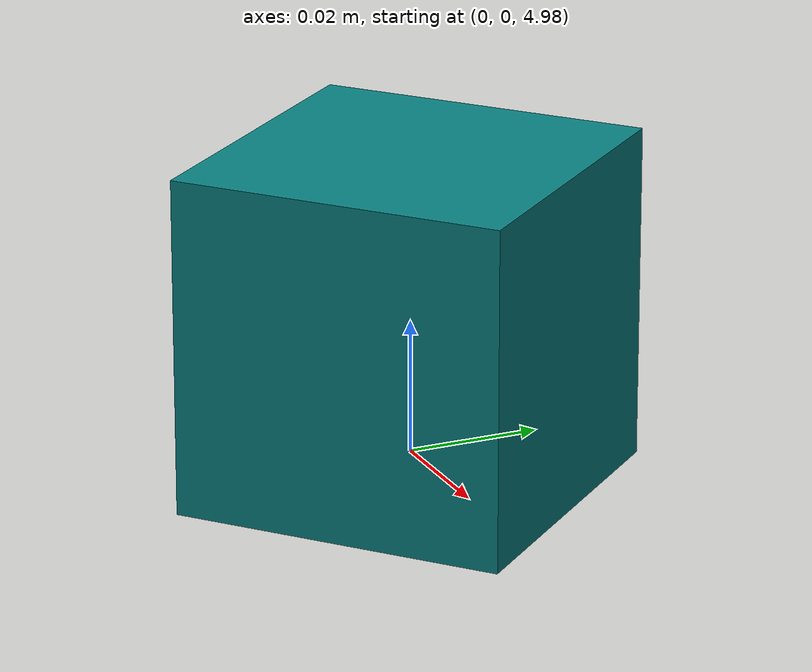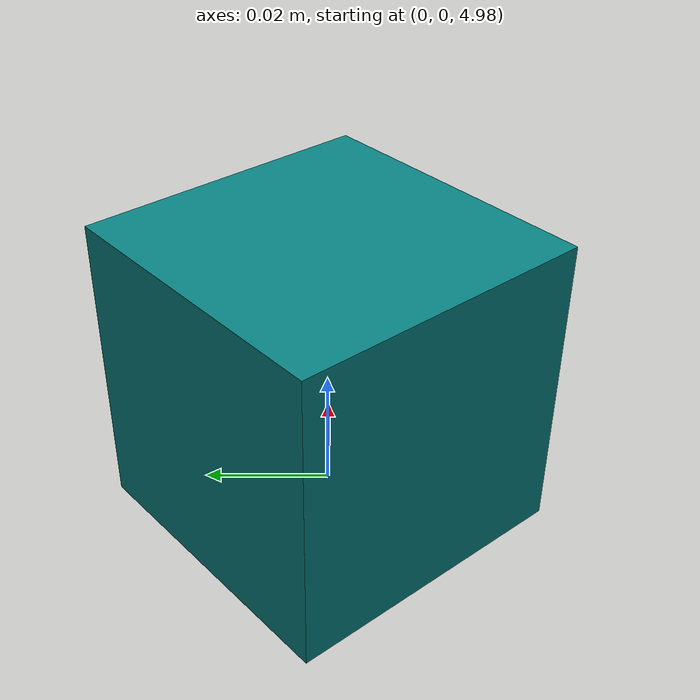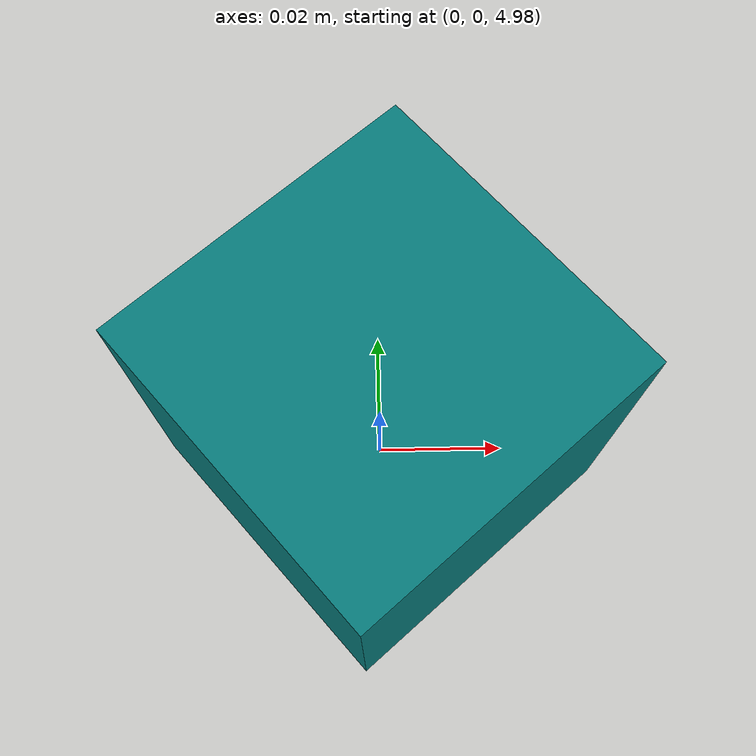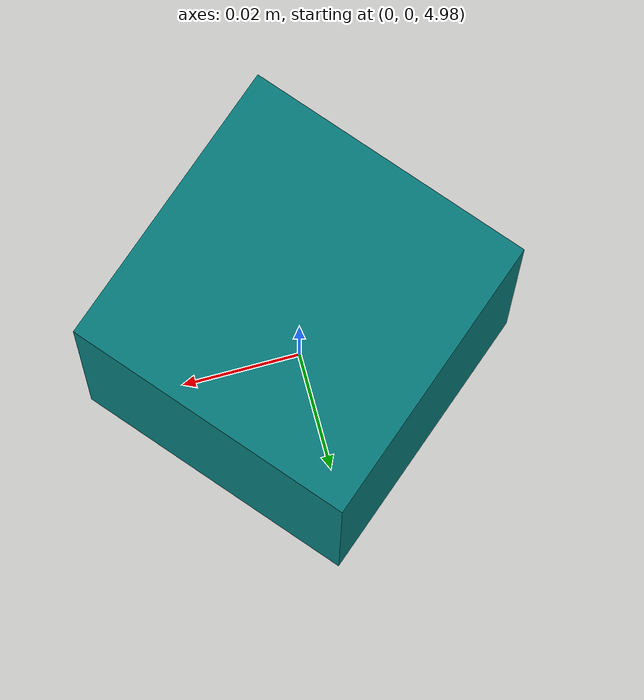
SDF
<?xml version="1.0" ?>
<sdf version="1.3">
    <world name="default">
        <scene>
            <ambient>0.5 0.5 0.5 1.0</ambient>
            <background>0.5 0.5 0.5 1.0</background>
        </scene>
        <physics type="ode">
            <gravity>0.0 0.0 0.0</gravity>
            <ode>
                <solver>
                    <type>quick</type>
                    <dt>0.001</dt>
                    <iters>20</iters>
                    <sor>1.3</sor>
                </solver>
                <constraints>
                    <cfm>0</cfm>
                    <erp>0.2</erp>
                    <contact_max_correcting_vel>100.0</contact_max_correcting_vel>
                    <contact_surface_layer>0.0</contact_surface_layer>
                </constraints>
            </ode>
            <max_contacts>250</max_contacts>
        </physics>
        <model name="model_1">
            <pose>0.0 0.0 5.0 0.0 0.0 0.0</pose>
            <link name="link_1">
                <pose>0.0 0.0 0.0 0.0 0.0 0.707</pose>
                <inertial>
                    <pose>0.0 0.0 0.0 0.0 0.0 0.0</pose>
                    <inertia>
                        <ixx>1.0</ixx>
                        <ixy>0.0</ixy>
                        <ixz>0.0</ixz>
                        <iyy>1.0</iyy>
                        <iyz>0.0</iyz>
                        <izz>1.0</izz>
                    </inertia>
                    <mass>10.0</mass>
                </inertial>
                <visual name="visual_box">
                    <pose>0.0 0.0 0.0 0.0 0.0 0.0</pose>
                    <geometry>
                        <box>
                            <size>0.05 0.05 0.05</size>
                        </box>
                    </geometry>
                    <material normal_map="normal_map.png">
                        <ambient>0.03 0.5 0.5 1.0</ambient>
                        <script>Gazebo/Red</script>
                    </material>
                    <cast_shadows>true</cast_shadows>
                    <laser_retro>100.0</laser_retro>
                </visual>
                <collision name="collision_box">
                    <pose>0.0 0.0 0.0 0.0 0.0 0.0</pose>
                    <max_contacts>250</max_contacts>
                    <geometry>
                        <box>
                            <size>0.05 0.05 0.05</size>
                        </box>
                    </geometry>
                    <surface>
                        <friction>
                            <ode>
                                <mu>0.5</mu>
                                <mu2>0.2</mu2>
                                <fdir1>1.0 0 0</fdir1>
                                <slip1>0</slip1>
                                <slip2>0</slip2>
                            </ode>
                        </friction>
                        <bounce>
                            <restitution_coefficient>0</restitution_coefficient>
                            <threshold>1000000.0</threshold>
                        </bounce>
                        <contact>
                            <ode>
                                <soft_cfm>0</soft_cfm>
                                <soft_erp>0.2</soft_erp>
                                <kp>1e15</kp>
                                <kd>1e13</kd>
                                <max_vel>100.0</max_vel>
                                <min_depth>0.0001</min_depth>
                            </ode>
                        </contact>
                    </surface>
                    <laser_retro>100.0</laser_retro>
                </collision>
                <sensor name="laser_sensor" type="imu">
                    <pose>0.0 0.0 0.0 0.0 0.0 0.0</pose>
                    <imu>
                        <topic>/imu</topic>
                    </imu>
                    <always_on>true</always_on>
                    <update_rate>20.0</update_rate>
                </sensor>
                <gravity>false</gravity>
                <self_collide>true</self_collide>
                <kinematic>false</kinematic>
            </link>
            <plugin name="imu_controller" filename="libgazebo_ros_imu.so">
              <alwaysOn>true</alwaysOn>
              <updateRate>50</updateRate>
              <bodyName>link_1</bodyName>
              <topicName>/imu/data</topicName>
              <gaussianNoise>0.001</gaussianNoise>
              <xyzOffsets>0 0 0</xyzOffsets>
              <rpyOffsets>0 0 0</rpyOffsets>
            </plugin>
        </model>
        <light type="point" name="light_1">
            <pose>0.0 0.0 10.0 0.0 0.0 0.0</pose>
            <diffuse>0.5 0.5 0.5 0.5</diffuse>
            <attenuation>
                <range>1000.0</range>
                <constant>0.01</constant>
                <quadratic>0.0001</quadratic>
            </attenuation>
            <direction>0 0 -1</direction>
            <spot>
                <inner_angle>1.57</inner_angle>
                <outer_angle>1.57</outer_angle>
                <falloff>1.0</falloff>
            </spot>
            <cast_shadows>true</cast_shadows>
        </light>
    </world>
</sdf>
